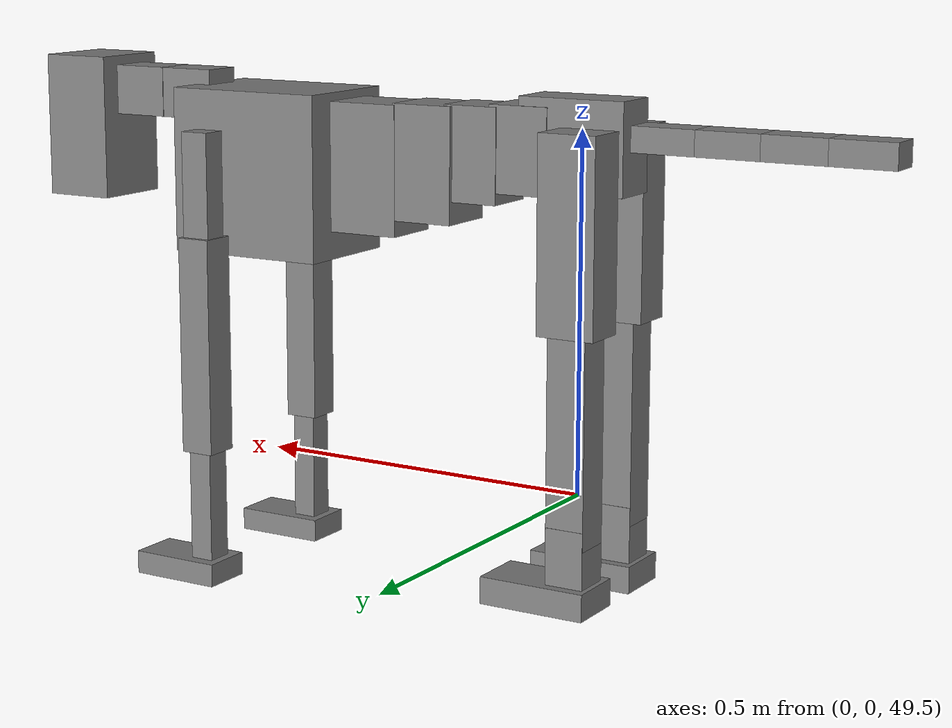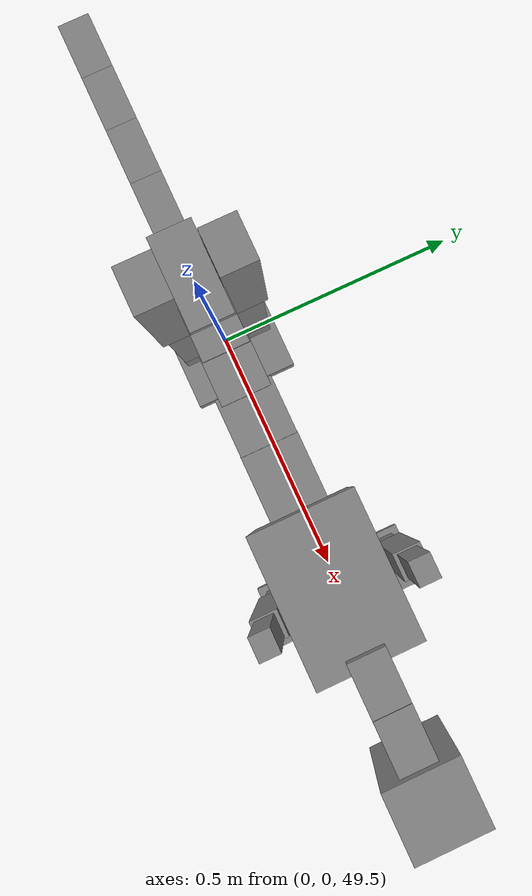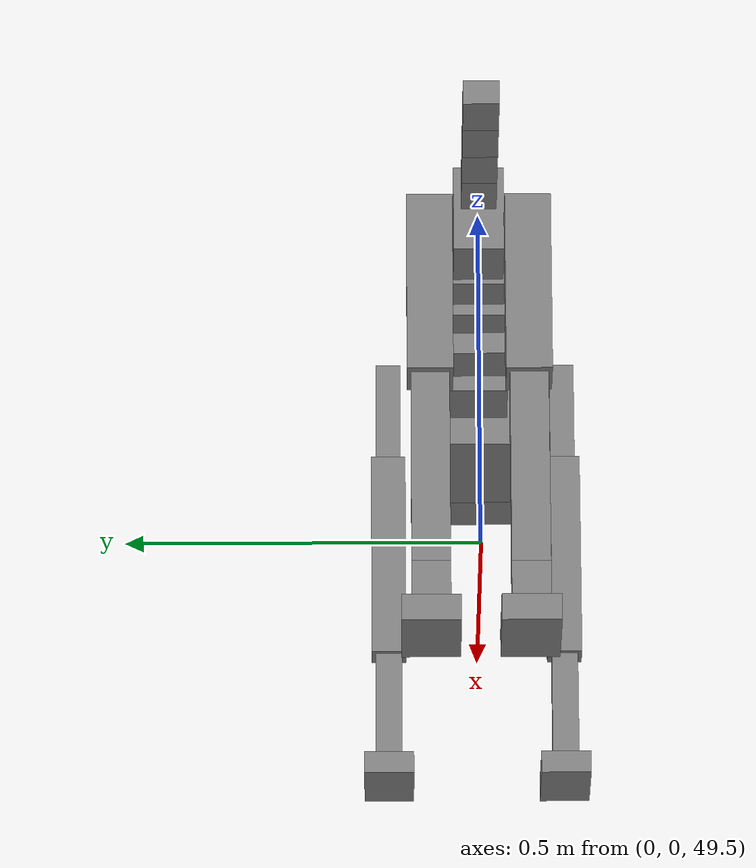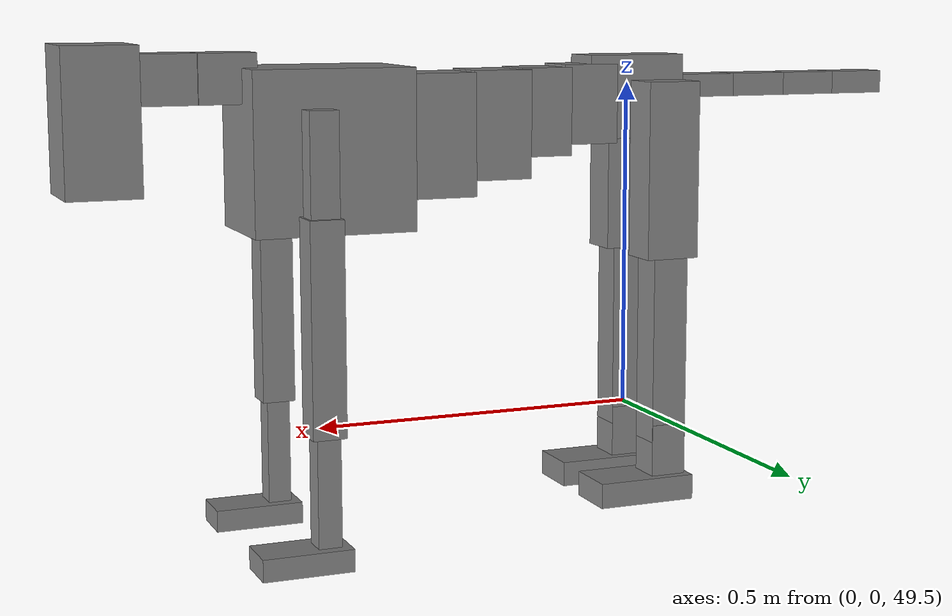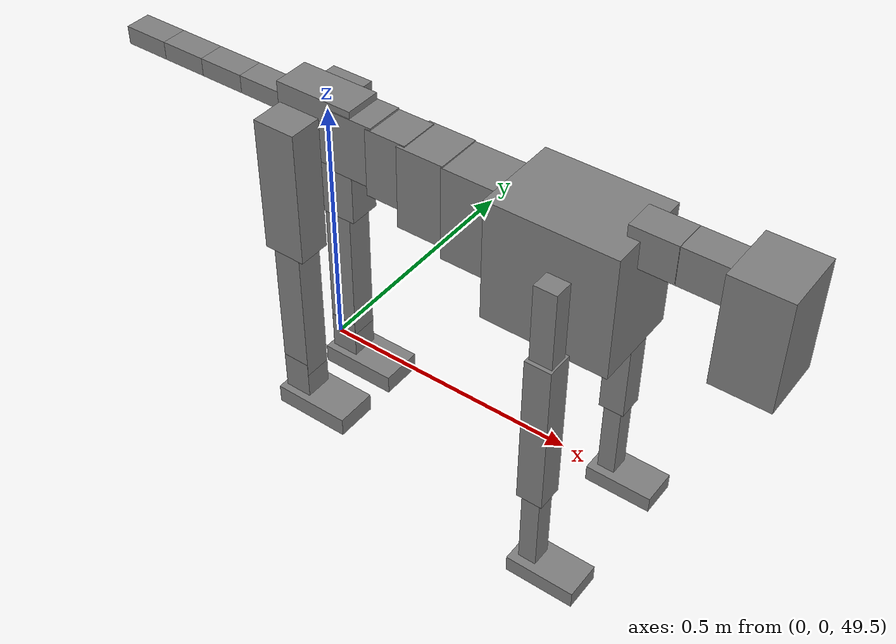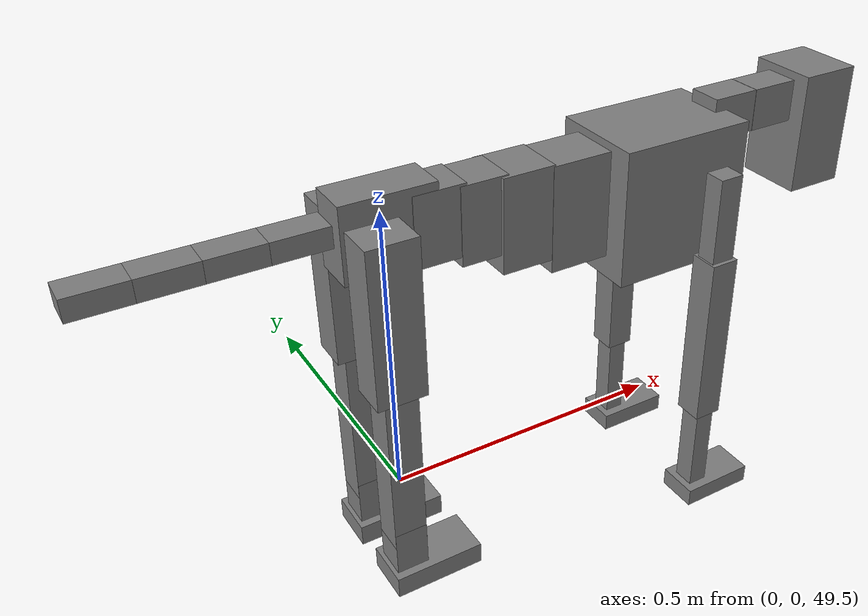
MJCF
<mujoco model="dog">

    <default>
        <joint armature="0.02" stiffness="1" damping="0.2" limited="true"/>
        <geom condim="3" friction="1 0.05 0.05" margin="0.01"/>
        <motor ctrllimited="true" ctrlrange="-1.0 1.0" forcelimited="true" gear="50"/>
    </default>

    <compiler inertiafromgeom="true" angle="radian"/>

    <option timestep="0.016" iterations="50" tolerance="1e-10" solver="Newton" jacobian="dense" cone="pyramidal"/>

    <size nconmax="20000" njmax="60000" nstack="5000000"/>
    <visual>
        <map force="0.1" zfar="30"/>
        <rgba haze="0.15 0.25 0.35 1"/>
        <quality shadowsize="2048"/>
        <global offwidth="800" offheight="800"/>
    </visual>

    <asset>
        <texture type="skybox" builtin="gradient" rgb1="0.3 0.5 0.7" rgb2="0 0 0" width="512" height="512"/>
        <texture name="texplane" type="2d" builtin="checker" rgb1=".2 .3 .4" rgb2=".1 0.15 0.2" width="512" height="512"
                 mark="cross" markrgb=".8 .8 .8"/>
        <texture name="texgeom" type="cube" builtin="flat" mark="cross" width="127" height="1278" rgb1="0.8 0.6 0.4"
                 rgb2="0.8 0.6 0.4" markrgb="1 1 1" random="0.01"/>

        <material name="matplane" reflectance="0.3" texture="texplane" texrepeat="1 1" texuniform="true"/>
        <material name="matgeom" texture="texgeom" texuniform="true" rgba="0.8 0.6 .4 1"/>
    </asset>

    <worldbody>
        <geom name="floor" pos="0 0 0" size="0 0 .25" type="plane" material="matplane" condim="3"/>

        <light directional="false" diffuse=".2 .2 .2" specular="0 0 0" pos="0 0 5" dir="0 0 -1" castshadow="false"/>
        <light mode="targetbodycom" target="torso" directional="false" diffuse=".8 .8 .8" specular="0.3 0.3 0.3"
               pos="0 0 4.0" dir="0 0 -1"/>

        <body name="root" pos="0 0 50">
            <freejoint name="root_1"/>
            <geom type="box" pos="0 0 -0.02" size="0.0774  0.0358  0.063" density="2030"/>

            <body name="spine1" pos="0.054 0 0">
                <joint name="spine1_y" axis="0 1 0" range="0 0.7" limited="true"/>
                <geom type="box" pos="0.02375 0 -0.03" size="0.04375  0.0375  0.05985" density="2030"/>

                <body name="spine2" pos="0.0612 0 0">
                    <joint name="spine2_y" axis="0 1 0" range="-0.15 0.15" limited="true"/>
                    <geom type="box" pos="0.03555  0  -0.04" size="0.04055  0.039  0.06615" density="2030"/>

                    <body name="spine3" pos="0.0730 0 0">
                        <joint name="spine3_y" axis="0 1 0" range="-0.15 0.15" limited="true"/>
                        <geom type="box" pos="0.03555  0  -0.057" size="0.04555  0.0445  0.081" density="2030"/>

                        <body name="spine4" pos="0.0780 0 0">
                            <joint name="spine4_y" axis="0 1 0" range="-0.15 0.15" limited="true"/>
                            <geom type="box" pos="0.05265  0  -0.07" size="0.05265  0.045  0.09135" density="2030"/>

                            <body name="torso" pos="0.1082 0 0">
                                <joint name="torso_y" axis="0 1 0" range="-0.15 0.15" limited="true"/>
                                <geom type="box" pos="0.11925  0  -0.085" size="0.11925  0.085  0.11745"
                                      density="2030"/>

                                <body name="neck1" pos="0.2160  0   0.0180">
                                    <joint name="neck1_y" axis="0 1 0" range="-1.2  -1" limited="true"/>
                                    <geom type="box" pos="0.0423  0  0" size="0.0423  0.03  0.036" density="2325"/>

                                    <body name="neck2" pos="0.0853  0  0">
                                        <joint name="neck2_y" axis="0 1 0" range="0.1  0" limited="true"/>
                                        <geom type="box" pos="0.0423  0  0" size="0.0423  0.03  0.036" density="2325"/>

                                        <body name="head" pos="0.0853  0  0">
                                            <joint name="head_y" axis="0 1 0" range="-0.3  -0.2" limited="true"/>
                                            <geom type="box" pos="0.0531  0  -0.055" size="0.0531  0.06  0.1044"
                                                  density="4030"/>

                                        </body>
                                    </body>
                                </body>

                                <body name="front_shoulder" pos="0.156  0   -0.0480">
                                    <joint name="front_shoulder_y" axis="0 1 0" range="-1 1.5" limited="true"/>
                                    <geom type="box" pos="0 0.13 -0.0612" size="0.0211  0.0181  0.0879" density="1158"/>
                                    <geom type="box" pos="0 -0.13 -0.0612" size="0.0211  0.0181  0.0879"
                                          density="1158"/>

                                    <body name="front_elbow" pos="0  0  -0.1224">
                                        <joint name="front_elbow_y" axis="0 1 0" range="-2 0" limited="true"/>
                                        <geom type="box" pos="0 0.13 -0.1544" size="0.0248  0.0253  0.1544"
                                              density="1081"/>
                                        <geom type="box" pos="0 -0.13 -0.1544" size="0.0248  0.0253  0.1544"
                                              density="1081"/>

                                        <body name="front_wrist" pos="0  0  -0.3088">
                                            <joint name="front_wrist_y" axis="0 1 0" range="-0.2 0" limited="true"/>
                                            <geom type="box" pos="0 0.13 -0.0863" size="0.0174  0.0193  0.0995"
                                                  density="1664"/>
                                            <geom type="box" pos="0 -0.13 -0.0863" size="0.0174  0.0193  0.0995"
                                                  density="1664"/>

                                            <body name="front_finger_end" pos="0  0  -0.1727">
                                                <joint name="front_finger_y" axis="0 1 0" range="-0.4 1"
                                                       limited="true"/>
                                                <geom type="box" pos="0.0364  0.13  -0.0014"
                                                      size="0.0668  0.0364  0.0164" density="1515"/>
                                                <geom type="box" pos="0.0364  -0.13  -0.0014"
                                                      size="0.0668  0.0364  0.0164" density="1515"/>

                                            </body>

                                        </body>
                                    </body>
                                </body>

                            </body>
                        </body>
                    </body>
                </body>
            </body>

            <body name="back_hip" pos="-0.03 0 -0.018">
                <joint name="back_hip_y" axis="0 1 0" range="-1.5 0.3" limited="true"/>
                <geom type="box" pos="0 0.07 -0.1109" size="0.0417  0.0327  0.1337" density="1154"/>
                <geom type="box" pos="0 -0.07 -0.1109" size="0.0417  0.0327  0.1337" density="1154"/>

                <body name="back_knee" pos="0  0  -0.2217">
                    <joint name="back_knee_y" axis="0 1 0" range="0 2.8" limited="true"/>
                    <geom type="box" pos="0 0.07 -0.1460" size="0.0278  0.0274  0.1616" density="1227"/>
                    <geom type="box" pos="0 -0.07 -0.1460" size="0.0278  0.0274  0.1616" density="1227"/>

                    <body name="back_ankle" pos="0  0  -0.2921">
                        <joint name="back_ankle_y" axis="0 1 0" range="-2.2 0" limited="true"/>
                        <geom type="box" pos="0 0.07 -0.0415" size="0.0276  0.0276  0.0527" density="1284"/>
                        <geom type="box" pos="0 -0.07 -0.0415" size="0.0276  0.0276  0.0527" density="1284"/>

                        <body name="back_toe_end" pos="0  0  -0.0829">
                            <joint name="back_toe_y" axis="0 1 0" range="-0.4 1" limited="true"/>
                            <geom type="box" pos="0.0420  0.07  -0.0041" size="0.0770  0.0420  0.0191" density="1515"/>
                            <geom type="box" pos="0.0420  -0.07  -0.0041" size="0.0770  0.0420  0.0191" density="1515"/>

                        </body>
                    </body>
                </body>
            </body>

            <body name="tail1" pos="-0.074 0 -0.006">
                <joint name="tail1_y" axis="0 1 0" range="-0.2 0.2" limited="true"/>
                <geom type="box" pos="-0.0536  0  0" size="0.045  0.025  0.0175" density="1587"/>

                <body name="tail2" pos="-0.09 0 0">
                    <joint name="tail2_y" axis="0 1 0" range="-0.2 0.2" limited="true"/>
                    <geom type="box" pos="-0.0536  0  0" size="0.045  0.025  0.0175" density="1587"/>

                    <body name="tail3" pos="-0.09 0 0">
                        <joint name="tail3_y" axis="0 1 0" range="-0.2 0.2" limited="true"/>
                        <geom type="box" pos="-0.0536  0  0" size="0.045  0.025  0.0175" density="1587"/>

                        <body name="tail4" pos="-0.09 0 0">
                            <joint name="tail4_y" axis="0 1 0" range="-0.2 0.2" limited="true"/>
                            <geom type="box" pos="-0.0536  0  0" size="0.045  0.025  0.0175" density="1587"/>

                        </body>
                    </body>
                </body>
            </body>
        </body>
    </worldbody>

    <actuator>
        <motor joint="spine1_y" forcerange="-150 150     "/>
        <motor joint="spine2_y" forcerange="-150 150     "/>
        <motor joint="spine3_y" forcerange="-150 150     "/>
        <motor joint="spine4_y" forcerange="-150 150     "/>
        <motor joint="torso_y" forcerange="-150 150     "/>
        <motor joint="neck1_y" forcerange="-100 100       "/>
        <motor joint="neck2_y" forcerange="-100 100       "/>
        <motor joint="head_y" forcerange="-150 150       "/>
        <motor joint="front_shoulder_y" forcerange="-113.40 107.11"/>
        <motor joint="front_elbow_y" forcerange="-162.85 121.28"/>
        <motor joint="front_wrist_y" forcerange="-83.50 70.93"/>
        <motor joint="front_finger_y" forcerange="-83.21 71.09"/>
        <motor joint="back_hip_y" forcerange="-253.37 382.77"/>
        <motor joint="back_knee_y" forcerange="-281.83 316.55"/>
        <motor joint="back_angle_y" forcerange="-180.16 161.99"/>
        <motor joint="back_toe_y" forcerange="-135.90 120.26"/>
        <motor joint="tail1_y" forcerange="-50 50     "/>
        <motor joint="tail2_y" forcerange="-50 50     "/>
        <motor joint="tail3_y" forcerange="-50 50     "/>
        <motor joint="tail4_y" forcerange="-50 50     "/>
    </actuator>
</mujoco>
